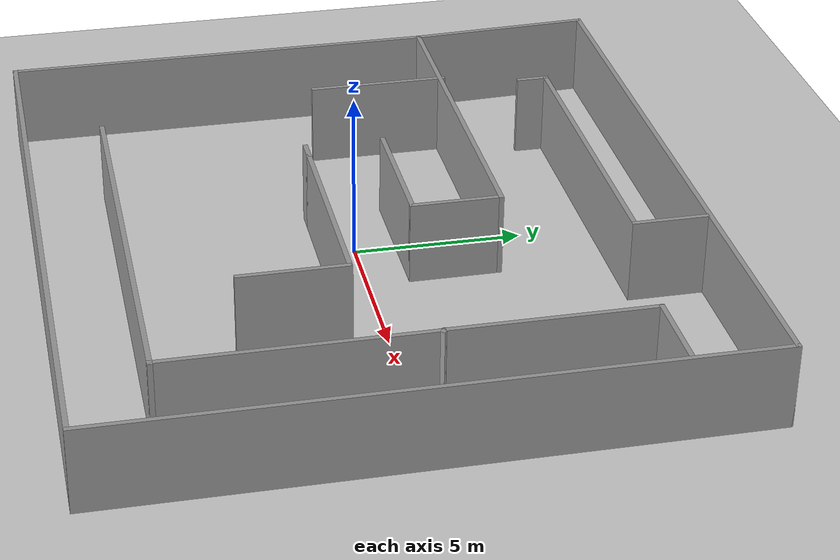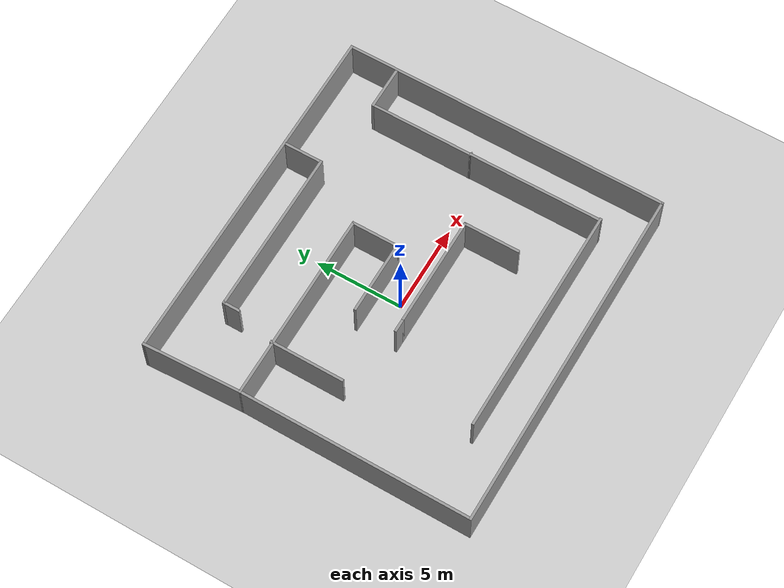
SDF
<sdf version="1.7">
 <world name="default">
  <light name="sun" type="directional">
   <pose>0 0 10 0 -0 0</pose>
   <diffuse>0.8 0.8 0.8 1</diffuse>
   <specular>0.2 0.2 0.2 1</specular>
   <attenuation>
    <range>1000</range>
    <constant>0.9</constant>
    <linear>0.01</linear>
    <quadratic>0.001</quadratic>
   </attenuation>
   <direction>-0.5 0.1 -0.9</direction>
   <spot><inner_angle>0</inner_angle><outer_angle>0</outer_angle><falloff>0</falloff></spot>
  </light>
  <model name="ground_plane">
   <static>1</static>
   <link name="link">
    <collision name="collision">
     <geometry><plane><normal>0 0 1</normal><size>100 100</size></plane></geometry>
     <surface>
      <contact><collide_bitmask>65535</collide_bitmask></contact>
      <friction><ode><mu>100</mu><mu2>50</mu2></ode></friction>
     </surface>
    </collision>
    <visual name="visual">
     <cast_shadows>0</cast_shadows>
     <geometry><plane><normal>0 0 1</normal><size>100 100</size></plane></geometry>
     <material>
      <script><uri>file://media/materials/scripts/gazebo.material</uri><name>Gazebo/Grey</name></script>
     </material>
    </visual>
   </link>
  </model>
  <gravity>0 0 -9.8</gravity>
  <magnetic_field>6e-06 2.3e-05 -4.2e-05</magnetic_field>
  <atmosphere type="adiabatic"/>
  <physics type="ode">
   <max_step_size>0.001</max_step_size>
   <real_time_factor>1</real_time_factor>
   <real_time_update_rate>1000</real_time_update_rate>
  </physics>
  <scene><ambient>0.4 0.4 0.4 1</ambient><background>0.7 0.7 0.7 1</background><shadows>1</shadows></scene>
  <spherical_coordinates>
   <surface_model>EARTH_WGS84</surface_model>
   <latitude_deg>0</latitude_deg>
   <longitude_deg>0</longitude_deg>
   <elevation>0</elevation>
   <heading_deg>0</heading_deg>
  </spherical_coordinates>
  <model name="maze2">
   <pose>0.819123 0.107174 0 0 -0 0</pose>
   <link name="Wall_0">
    <collision name="Wall_0_Collision">
     <geometry><box><size>6.5 0.15 2.5</size></box></geometry>
     <pose>0 0 1.25 0 -0 0</pose>
    </collision>
    <visual name="Wall_0_Visual">
     <pose>0 0 1.25 0 -0 0</pose>
     <geometry><box><size>6.5 0.15 2.5</size></box></geometry>
     <material>
      <script><uri>file://media/materials/scripts/gazebo.material</uri><name>Gazebo/Grey</name></script>
      <ambient>1 1 1 1</ambient>
     </material>
     <meta><layer>0</layer></meta>
    </visual>
    <pose>0.726664 -1.15166 0 0 -0 0</pose>
   </link>
   <link name="Wall_10">
    <collision name="Wall_10_Collision">
     <geometry><box><size>20.25 0.15 2.5</size></box></geometry>
     <pose>0 0 1.25 0 -0 0</pose>
    </collision>
    <visual name="Wall_10_Visual">
     <pose>0 0 1.25 0 -0 0</pose>
     <geometry><box><size>20.25 0.15 2.5</size></box></geometry>
     <material>
      <script><uri>file://media/materials/scripts/gazebo.material</uri><name>Gazebo/Grey</name></script>
      <ambient>1 1 1 1</ambient>
     </material>
     <meta><layer>0</layer></meta>
    </visual>
    <pose>0.001664 9.29834 0 0 -0 3.14159</pose>
   </link>
   <link name="Wall_11">
    <collision name="Wall_11_Collision">
     <geometry><box><size>5.65568 0.15 2.5</size></box></geometry>
     <pose>0 0 1.25 0 -0 0</pose>
    </collision>
    <visual name="Wall_11_Visual">
     <pose>0 0 1.25 0 -0 0</pose>
     <geometry><box><size>5.65568 0.15 2.5</size></box></geometry>
     <material>
      <script><uri>file://media/materials/scripts/gazebo.material</uri><name>Gazebo/Grey</name></script>
      <ambient>1 1 1 1</ambient>
     </material>
     <meta><layer>0</layer></meta>
    </visual>
    <pose>-9.92334 6.54834 0 0 -0 -1.52537</pose>
   </link>
   <link name="Wall_13">
    <collision name="Wall_13_Collision">
     <geometry><box><size>3.25 0.15 2.5</size></box></geometry>
     <pose>0 0 1.25 0 -0 0</pose>
    </collision>
    <visual name="Wall_13_Visual">
     <pose>0 0 1.25 0 -0 0</pose>
     <geometry><box><size>3.25 0.15 2.5</size></box></geometry>
     <material>
      <script><uri>file://media/materials/scripts/gazebo.material</uri><name>Gazebo/Grey</name></script>
      <ambient>1 1 1 1</ambient>
     </material>
     <meta><layer>0</layer></meta>
    </visual>
    <pose>3.90166 -2.70166 0 0 -0 -1.5708</pose>
   </link>
   <link name="Wall_16">
    <collision name="Wall_16_Collision">
     <geometry><box><size>2.5 0.15 2.5</size></box></geometry>
     <pose>0 0 1.25 0 -0 0</pose>
    </collision>
    <visual name="Wall_16_Visual">
     <pose>0 0 1.25 0 -0 0</pose>
     <geometry><box><size>2.5 0.15 2.5</size></box></geometry>
     <material>
      <script><uri>file://media/materials/scripts/gazebo.material</uri><name>Gazebo/Grey</name></script>
      <ambient>1 1 1 1</ambient>
     </material>
     <meta><layer>0</layer></meta>
    </visual>
    <pose>8.72926 6.4831 0 0 -0 3.14159</pose>
   </link>
   <link name="Wall_17">
    <collision name="Wall_17_Collision">
     <geometry><box><size>6 0.15 2.5</size></box></geometry>
     <pose>0 0 1.25 0 -0 0</pose>
    </collision>
    <visual name="Wall_17_Visual">
     <pose>0 0 1.25 0 -0 0</pose>
     <geometry><box><size>6 0.15 2.5</size></box></geometry>
     <material>
      <script><uri>file://media/materials/scripts/gazebo.material</uri><name>Gazebo/Grey</name></script>
      <ambient>1 1 1 1</ambient>
     </material>
     <meta><layer>0</layer></meta>
    </visual>
    <pose>7.55426 3.5581 0 0 -0 -1.5708</pose>
   </link>
   <link name="Wall_18">
    <collision name="Wall_18_Collision">
     <geometry><box><size>0.228088 0.15 2.5</size></box></geometry>
     <pose>0 0 1.25 0 -0 0</pose>
    </collision>
    <visual name="Wall_18_Visual">
     <pose>0 0 1.25 0 -0 0</pose>
     <geometry><box><size>0.228088 0.15 2.5</size></box></geometry>
     <material>
      <script><uri>file://media/materials/scripts/gazebo.material</uri><name>Gazebo/Grey</name></script>
      <ambient>1 1 1 1</ambient>
     </material>
     <meta><layer>0</layer></meta>
    </visual>
    <pose>7.58537 0.60951 0 0 -0 -0.648613</pose>
   </link>
   <link name="Wall_19">
    <collision name="Wall_19_Collision">
     <geometry><box><size>7.75 0.15 2.5</size></box></geometry>
     <pose>0 0 1.25 0 -0 0</pose>
    </collision>
    <visual name="Wall_19_Visual">
     <pose>0 0 1.25 0 -0 0</pose>
     <geometry><box><size>7.75 0.15 2.5</size></box></geometry>
     <material>
      <script><uri>file://media/materials/scripts/gazebo.material</uri><name>Gazebo/Grey</name></script>
      <ambient>1 1 1 1</ambient>
     </material>
     <meta><layer>0</layer></meta>
    </visual>
    <pose>7.56932 -3.21408 0 0 -0 -1.5708</pose>
   </link>
   <link name="Wall_2">
    <collision name="Wall_2_Collision">
     <geometry><box><size>0.75 0.15 2.5</size></box></geometry>
     <pose>0 0 1.25 0 -0 0</pose>
    </collision>
    <visual name="Wall_2_Visual">
     <pose>0 0 1.25 0 -0 0</pose>
     <geometry><box><size>0.75 0.15 2.5</size></box></geometry>
     <material>
      <script><uri>file://media/materials/scripts/gazebo.material</uri><name>Gazebo/Grey</name></script>
      <ambient>1 1 1 1</ambient>
     </material>
     <meta><layer>0</layer></meta>
    </visual>
    <pose>-2.74834 -1.15166 0 0 -0 3.14159</pose>
   </link>
   <link name="Wall_20">
    <collision name="Wall_20_Collision">
     <geometry><box><size>13.2123 0.15 2.5</size></box></geometry>
     <pose>0 0 1.25 0 -0 0</pose>
    </collision>
    <visual name="Wall_20_Visual">
     <pose>0 0 1.25 0 -0 0</pose>
     <geometry><box><size>13.2123 0.15 2.5</size></box></geometry>
     <material>
      <script><uri>file://media/materials/scripts/gazebo.material</uri><name>Gazebo/Grey</name></script>
      <ambient>1 1 1 1</ambient>
     </material>
     <meta><layer>0</layer></meta>
    </visual>
    <pose>1.08537 -6.99049 0 0 -0 3.13798</pose>
   </link>
   <link name="Wall_23">
    <collision name="Wall_23_Collision">
     <geometry><box><size>4.25 0.15 2.5</size></box></geometry>
     <pose>0 0 1.25 0 -0 0</pose>
    </collision>
    <visual name="Wall_23_Visual">
     <pose>0 0 1.25 0 -0 0</pose>
     <geometry><box><size>4.25 0.15 2.5</size></box></geometry>
     <material>
      <script><uri>file://media/materials/scripts/gazebo.material</uri><name>Gazebo/Grey</name></script>
      <ambient>1 1 1 1</ambient>
     </material>
     <meta><layer>0</layer></meta>
    </visual>
    <pose>-6.72187 1.82222 0 0 -0 -1.5708</pose>
   </link>
   <link name="Wall_25">
    <collision name="Wall_25_Collision">
     <geometry><box><size>2.25 0.15 2.5</size></box></geometry>
     <pose>0 0 1.25 0 -0 0</pose>
    </collision>
    <visual name="Wall_25_Visual">
     <pose>0 0 1.25 0 -0 0</pose>
     <geometry><box><size>2.25 0.15 2.5</size></box></geometry>
     <material>
      <script><uri>file://media/materials/scripts/gazebo.material</uri><name>Gazebo/Grey</name></script>
      <ambient>1 1 1 1</ambient>
     </material>
     <meta><layer>0</layer></meta>
    </visual>
    <pose>3.2497 8.12903 0 0 -0 -1.5708</pose>
   </link>
   <link name="Wall_26">
    <collision name="Wall_26_Collision">
     <geometry><box><size>9.5 0.15 2.5</size></box></geometry>
     <pose>0 0 1.25 0 -0 0</pose>
    </collision>
    <visual name="Wall_26_Visual">
     <pose>0 0 1.25 0 -0 0</pose>
     <geometry><box><size>9.5 0.15 2.5</size></box></geometry>
     <material>
      <script><uri>file://media/materials/scripts/gazebo.material</uri><name>Gazebo/Grey</name></script>
      <ambient>1 1 1 1</ambient>
     </material>
     <meta><layer>0</layer></meta>
    </visual>
    <pose>-1.42531 7.07903 0 0 -0 3.14159</pose>
   </link>
   <link name="Wall_27">
    <collision name="Wall_27_Collision">
     <geometry><box><size>1 0.15 2.5</size></box></geometry>
     <pose>0 0 1.25 0 -0 0</pose>
    </collision>
    <visual name="Wall_27_Visual">
     <pose>0 0 1.25 0 -0 0</pose>
     <geometry><box><size>1 0.15 2.5</size></box></geometry>
     <material>
      <script><uri>file://media/materials/scripts/gazebo.material</uri><name>Gazebo/Grey</name></script>
      <ambient>1 1 1 1</ambient>
     </material>
     <meta><layer>0</layer></meta>
    </visual>
    <pose>-6.1003 6.65403 0 0 -0 -1.5708</pose>
   </link>
   <link name="Wall_4">
    <collision name="Wall_4_Collision">
     <geometry><box><size>4.25 0.15 2.5</size></box></geometry>
     <pose>0 0 1.25 0 -0 0</pose>
    </collision>
    <visual name="Wall_4_Visual">
     <pose>0 0 1.25 0 -0 0</pose>
     <geometry><box><size>4.25 0.15 2.5</size></box></geometry>
     <material>
      <script><uri>file://media/materials/scripts/gazebo.material</uri><name>Gazebo/Grey</name></script>
      <ambient>1 1 1 1</ambient>
     </material>
     <meta><layer>0</layer></meta>
    </visual>
    <pose>-0.998336 1.19834 0 0 -0 0</pose>
   </link>
   <link name="Wall_5">
    <collision name="Wall_5_Collision">
     <geometry><box><size>2.75 0.15 2.5</size></box></geometry>
     <pose>0 0 1.25 0 -0 0</pose>
    </collision>
    <visual name="Wall_5_Visual">
     <pose>0 0 1.25 0 -0 0</pose>
     <geometry><box><size>2.75 0.15 2.5</size></box></geometry>
     <material>
      <script><uri>file://media/materials/scripts/gazebo.material</uri><name>Gazebo/Grey</name></script>
      <ambient>1 1 1 1</ambient>
     </material>
     <meta><layer>0</layer></meta>
    </visual>
    <pose>1.05166 2.49834 0 0 -0 1.5708</pose>
   </link>
   <link name="Wall_6">
    <collision name="Wall_6_Collision">
     <geometry><box><size>11 0.15 2.5</size></box></geometry>
     <pose>0 0 1.25 0 -0 0</pose>
    </collision>
    <visual name="Wall_6_Visual">
     <pose>0 0 1.25 0 -0 0</pose>
     <geometry><box><size>11 0.15 2.5</size></box></geometry>
     <material>
      <script><uri>file://media/materials/scripts/gazebo.material</uri><name>Gazebo/Grey</name></script>
      <ambient>1 1 1 1</ambient>
     </material>
     <meta><layer>0</layer></meta>
    </visual>
    <pose>-4.37334 3.79834 0 0 -0 3.14159</pose>
   </link>
   <link name="Wall_7">
    <collision name="Wall_7_Collision">
     <geometry><box><size>13.25 0.15 2.5</size></box></geometry>
     <pose>0 0 1.25 0 -0 0</pose>
    </collision>
    <visual name="Wall_7_Visual">
     <pose>0 0 1.25 0 -0 0</pose>
     <geometry><box><size>13.25 0.15 2.5</size></box></geometry>
     <material>
      <script><uri>file://media/materials/scripts/gazebo.material</uri><name>Gazebo/Grey</name></script>
      <ambient>1 1 1 1</ambient>
     </material>
     <meta><layer>0</layer></meta>
    </visual>
    <pose>-9.79834 -2.75166 0 0 -0 -1.5708</pose>
   </link>
   <link name="Wall_8">
    <collision name="Wall_8_Collision">
     <geometry><box><size>20 0.15 2.5</size></box></geometry>
     <pose>0 0 1.25 0 -0 0</pose>
    </collision>
    <visual name="Wall_8_Visual">
     <pose>0 0 1.25 0 -0 0</pose>
     <geometry><box><size>20 0.15 2.5</size></box></geometry>
     <material>
      <script><uri>file://media/materials/scripts/gazebo.material</uri><name>Gazebo/Grey</name></script>
      <ambient>1 1 1 1</ambient>
     </material>
     <meta><layer>0</layer></meta>
    </visual>
    <pose>0.126664 -9.30166 0 0 -0 0</pose>
   </link>
   <link name="Wall_9">
    <collision name="Wall_9_Collision">
     <geometry><box><size>18.75 0.15 2.5</size></box></geometry>
     <pose>0 0 1.25 0 -0 0</pose>
    </collision>
    <visual name="Wall_9_Visual">
     <pose>0 0 1.25 0 -0 0</pose>
     <geometry><box><size>18.75 0.15 2.5</size></box></geometry>
     <material>
      <script><uri>file://media/materials/scripts/gazebo.material</uri><name>Gazebo/Grey</name></script>
      <ambient>1 1 1 1</ambient>
     </material>
     <meta><layer>0</layer></meta>
    </visual>
    <pose>10.0517 -0.001664 0 0 -0 1.5708</pose>
   </link>
   <static>1</static>
  </model>
 </world>
</sdf>
